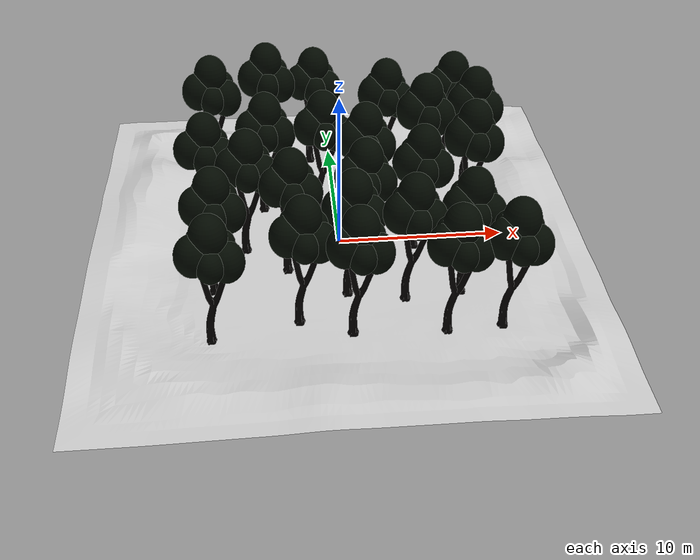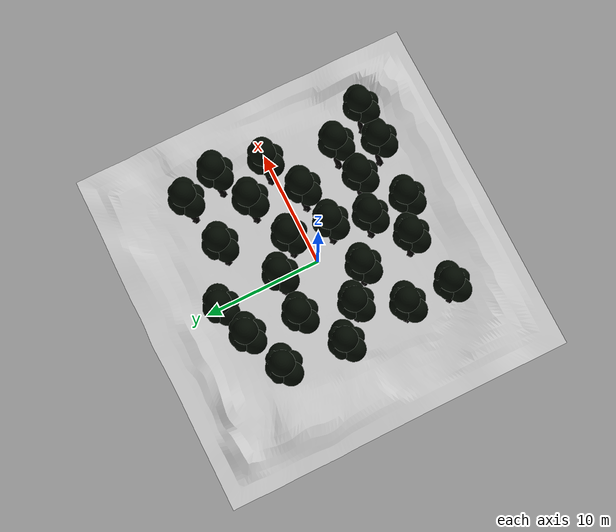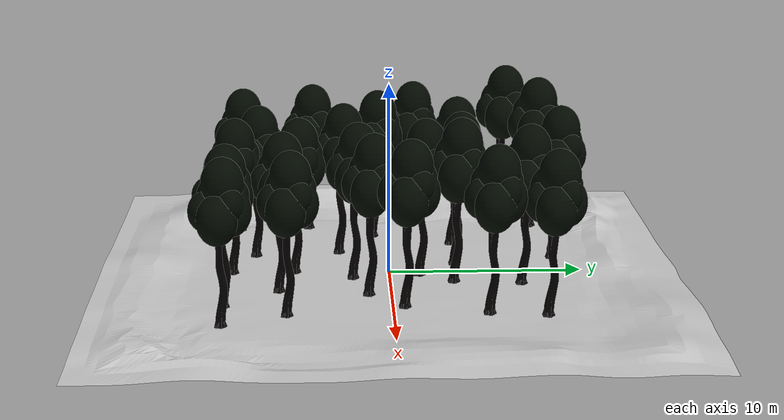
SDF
<sdf version="1.9">
 <world name="forest_trees_flat">
  <plugin name="ignition::gazebo::systems::Physics" filename="ignition-gazebo-physics-system"/>
  <plugin name="ignition::gazebo::systems::UserCommands" filename="ignition-gazebo-user-commands-system"/>
  <plugin name="ignition::gazebo::systems::SceneBroadcaster" filename="ignition-gazebo-scene-broadcaster-system"/>
  <plugin name="ignition::gazebo::systems::Contact" filename="ignition-gazebo-contact-system"/>
  <light name="sun" type="directional">
   <pose>0 0 10 0 0 0</pose>
   <diffuse>1 1 1 1</diffuse>
   <specular>0.2 0.2 0.2 1</specular>
   <direction>-0.5 0.5 -1</direction>
  </light>
  <gravity>0 0 -9.81</gravity>
  <magnetic_field>6e-06 2.3e-05 -4.2e-05</magnetic_field>
  <atmosphere type="adiabatic"/>
  <physics name="default_physics" type="dart">
   <max_step_size>0.001</max_step_size>
   <real_time_update_rate>1000</real_time_update_rate>
  </physics>
  <scene>
   <ambient>1 1 1 1</ambient>
   <background>0.6 0.8 1.0 1</background>
   <shadows>1</shadows>
   <grid>0</grid>
  </scene>
  <spherical_coordinates>
   <latitude_deg>0.0</latitude_deg>
   <longitude_deg>0.0</longitude_deg>
   <elevation>10.0</elevation>
   <heading_deg>0</heading_deg>
   <surface_model>EARTH_WGS84</surface_model>
  </spherical_coordinates>
  <include><uri>model://forest_env1</uri><name>forest_env1</name></include>
  <include><uri>model://tree1</uri><name>tree1_0</name><pose>0.080 -4.921 0.046 0 0 0.000000</pose></include>
  <include><uri>model://tree1</uri><name>tree1_1</name><pose>1.008 -1.921 0.016 0 0 0.000000</pose></include>
  <include><uri>model://tree1</uri><name>tree1_2</name><pose>-3.240 -2.615 0.024 0 0 0.000000</pose></include>
  <include><uri>model://tree1</uri><name>tree1_3</name><pose>-1.040 3.448 0.040 0 0 0.000000</pose></include>
  <include><uri>model://tree1</uri><name>tree1_4</name><pose>-2.761 -7.054 0.045 0 0 0.000000</pose></include>
  <include><uri>model://tree1</uri><name>tree1_5</name><pose>3.295 -5.664 0.124 0 0 0.000000</pose></include>
  <include><uri>model://tree1</uri><name>tree1_6</name><pose>-4.538 3.482 0.052 0 0 0.000000</pose></include>
  <include><uri>model://tree1</uri><name>tree1_7</name><pose>-7.750 6.393 1.089 0 0 0.000000</pose></include>
  <include><uri>model://tree1</uri><name>tree1_8</name><pose>0.108 -8.146 0.047 0 0 0.000000</pose></include>
  <include><uri>model://tree1</uri><name>tree1_9</name><pose>6.544 -5.202 0.002 0 0 0.000000</pose></include>
  <include><uri>model://tree1</uri><name>tree1_10</name><pose>4.370 -1.177 0.272 0 0 0.000000</pose></include>
  <include><uri>model://tree1</uri><name>tree1_11</name><pose>1.359 1.486 0.273 0 0 0.000000</pose></include>
  <include><uri>model://tree1</uri><name>tree1_12</name><pose>5.256 -8.341 0.021 0 0 0.000000</pose></include>
  <include><uri>model://tree1</uri><name>tree1_13</name><pose>-1.323 8.625 0.247 0 0 0.000000</pose></include>
  <include><uri>model://tree1</uri><name>tree1_14</name><pose>5.102 2.976 1.174 0 0 0.000000</pose></include>
  <include><uri>model://tree1</uri><name>tree1_15</name><pose>7.588 0.468 0.771 0 0 0.000000</pose></include>
  <include><uri>model://tree1</uri><name>tree1_16</name><pose>8.414 4.449 0.697 0 0 0.000000</pose></include>
  <include><uri>model://tree1</uri><name>tree1_17</name><pose>8.314 -8.282 0.172 0 0 0.000000</pose></include>
  <include><uri>model://tree1</uri><name>tree1_18</name><pose>-8.089 1.285 0.151 0 0 0.000000</pose></include>
  <include><uri>model://tree1</uri><name>tree1_19</name><pose>3.150 6.550 0.363 0 0 0.000000</pose></include>
  <include><uri>model://tree1</uri><name>tree1_20</name><pose>-7.492 -4.285 0.143 0 0 0.000000</pose></include>
  <include><uri>model://tree1</uri><name>tree1_21</name><pose>-7.566 -8.096 -0.080 0 0 0.000000</pose></include>
  <include><uri>model://tree1</uri><name>tree1_22</name><pose>7.567 7.364 0.245 0 0 0.000000</pose></include>
  <include><uri>model://tree1</uri><name>tree1_23</name><pose>-4.346 7.795 1.109 0 0 0.000000</pose></include>
  <include><uri>model://tree1</uri><name>tree1_24</name><pose>-5.672 -0.742 0.180 0 0 0.000000</pose></include>
 </world>
</sdf>

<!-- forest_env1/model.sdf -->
<sdf version="1.9">
  <model name="forest_env1">
    <static>true</static>
    <link name="ground_link">

      <!-- VISUAL: hilly mesh -->
      <visual name="ground_visual">
        <geometry>
          <mesh>
            <uri>model://forest_env1/meshes/Environment2.dae</uri>
            <scale>1 1 1</scale>
          </mesh>
        </geometry>
      </visual>

      <!-- COLLISION: match the visual (same uri + scale) -->
      <collision name="ground_collision">
        <geometry>
          <mesh>
            <!-- use a simplified collision mesh if you have one: Environment2_col.stl -->
            <uri>model://forest_env1/meshes/Environment2.dae</uri>
            <scale>1 1 1</scale>
          </mesh>
        </geometry>
        <surface>
          <contact>
            <ode>
              <kp>2e6</kp>
              <kd>1.0</kd>
              <max_vel>0.2</max_vel>
              <min_depth>0.001</min_depth>
            </ode>
          </contact>
          <friction><ode><mu>1.0</mu><mu2>1.0</mu2></ode></friction>
        </surface>
      </collision>

    </link>
  </model>
</sdf>

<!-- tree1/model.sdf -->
<sdf version="1.9">
  <model name="tree1">
    <static>true</static>
    <link name="tree_link">
      <visual name="tree_visual">
        <geometry>
          <mesh>
            <uri>model://tree1/meshes/tree_a.dae</uri>
            <scale>0.4 0.4 0.5</scale>
          </mesh>
        </geometry>
      </visual>
      <collision name="tree_collision">
        <geometry>
          <mesh>
            <uri>model://tree1/meshes/tree_a.dae</uri>
            <scale>0.4 0.4 0.5</scale>
          </mesh>
        </geometry>
      </collision>
    </link>
  </model>
</sdf>
